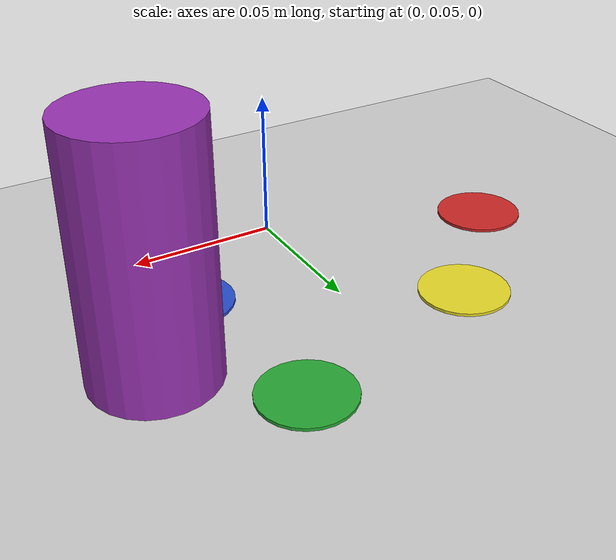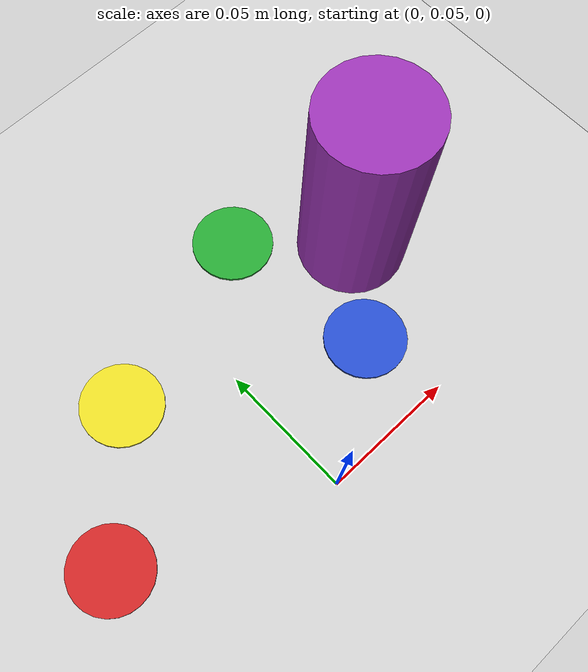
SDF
<sdf version="1.7">
 <world name="default">
  <light name="sun" type="directional">
   <pose>0 0 10 0 -0 0</pose>
   <diffuse>0.8 0.8 0.8 1</diffuse>
   <specular>0.2 0.2 0.2 1</specular>
   <attenuation>
    <range>1000</range>
    <constant>0.9</constant>
    <linear>0.01</linear>
    <quadratic>0.001</quadratic>
   </attenuation>
   <direction>-0.5 0.1 -0.9</direction>
   <spot><inner_angle>0</inner_angle><outer_angle>0</outer_angle><falloff>0</falloff></spot>
  </light>
  <model name="ground_plane">
   <static>1</static>
   <link name="link">
    <collision name="collision">
     <geometry><plane><normal>0 0 1</normal><size>100 100</size></plane></geometry>
     <surface>
      <contact><collide_bitmask>65535</collide_bitmask></contact>
      <friction><ode><mu>100</mu><mu2>50</mu2></ode></friction>
     </surface>
    </collision>
    <visual name="visual">
     <cast_shadows>0</cast_shadows>
     <geometry><plane><normal>0 0 1</normal><size>100 100</size></plane></geometry>
     <material>
      <script><uri>file://media/materials/scripts/gazebo.material</uri><name>Gazebo/Grey</name></script>
     </material>
    </visual>
   </link>
  </model>
  <gravity>0 0 -9.8</gravity>
  <magnetic_field>6e-06 2.3e-05 -4.2e-05</magnetic_field>
  <atmosphere type="adiabatic"/>
  <physics type="ode">
   <max_step_size>0.001</max_step_size>
   <real_time_factor>1</real_time_factor>
   <real_time_update_rate>1000</real_time_update_rate>
  </physics>
  <scene><ambient>0.4 0.4 0.4 1</ambient><background>0.7 0.7 0.7 1</background><shadows>1</shadows></scene>
  <audio><device>default</device></audio>
  <spherical_coordinates>
   <surface_model>EARTH_WGS84</surface_model>
   <latitude_deg>0</latitude_deg>
   <longitude_deg>0</longitude_deg>
   <elevation>0</elevation>
   <heading_deg>0</heading_deg>
  </spherical_coordinates>
  <model name="A_point">
   <pose>-0.073 0.08 0.0005 0 -0 0</pose>
   <link name="A_link">
    <inertial><mass>1</mass></inertial>
    <visual name="visual">
     <geometry><cylinder><radius>0.015</radius><length>0.001</length></cylinder></geometry>
     <material>
      <script><uri>file://media/materials/scripts/gazebo.material</uri><name>Gazebo/Red</name></script>
     </material>
    </visual>
   </link>
   <static>1</static>
  </model>
  <model name="B_point">
   <pose>0.035 0.14 0.0005 0 -0 0</pose>
   <link name="B_link">
    <inertial><mass>1</mass></inertial>
    <visual name="visual">
     <geometry><cylinder><radius>0.015</radius><length>0.001</length></cylinder></geometry>
     <material>
      <script><uri>file://media/materials/scripts/gazebo.material</uri><name>Gazebo/Green</name></script>
     </material>
    </visual>
   </link>
   <static>1</static>
  </model>
  <model name="C_point">
   <pose>0.044 0.08 0.0005 0 -0 0</pose>
   <link name="C_link">
    <inertial><mass>1</mass></inertial>
    <visual name="visual">
     <geometry><cylinder><radius>0.015</radius><length>0.001</length></cylinder></geometry>
     <material>
      <script><uri>file://media/materials/scripts/gazebo.material</uri><name>Gazebo/Blue</name></script>
     </material>
    </visual>
   </link>
   <static>1</static>
  </model>
  <model name="D_point">
   <pose>-0.035 0.12 0.0005 0 -0 0</pose>
   <link name="D_link">
    <inertial><mass>1</mass></inertial>
    <visual name="visual">
     <geometry><cylinder><radius>0.015</radius><length>0.001</length></cylinder></geometry>
     <material>
      <script><uri>file://media/materials/scripts/gazebo.material</uri><name>Gazebo/Yellow</name></script>
     </material>
    </visual>
   </link>
   <static>1</static>
  </model>
  <model name="unit_cylinder_1">
   <pose>0.066948 0.11 0.040026 -5e-06 -0.001307 0</pose>
   <link name="link">
    <inertial>
     <mass>1</mass>
     <inertia><ixx>1</ixx><ixy>0</ixy><ixz>0</ixz><iyy>1</iyy><iyz>0</iyz><izz>1</izz></inertia>
    </inertial>
    <collision name="collision">
     <geometry><cylinder><radius>0.02</radius><length>0.08</length></cylinder></geometry>
    </collision>
    <visual name="visual">
     <geometry><cylinder><radius>0.02</radius><length>0.08</length></cylinder></geometry>
     <material>
      <script><uri>file://media/materials/scripts/gazebo.material</uri><name>Gazebo/Purple</name></script>
     </material>
    </visual>
    <velocity_decay><linear>0</linear><angular>0</angular></velocity_decay>
   </link>
   <static>0</static>
  </model>
 </world>
</sdf>
